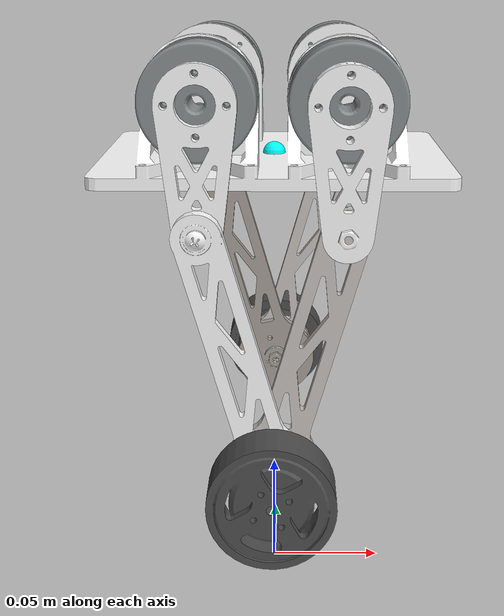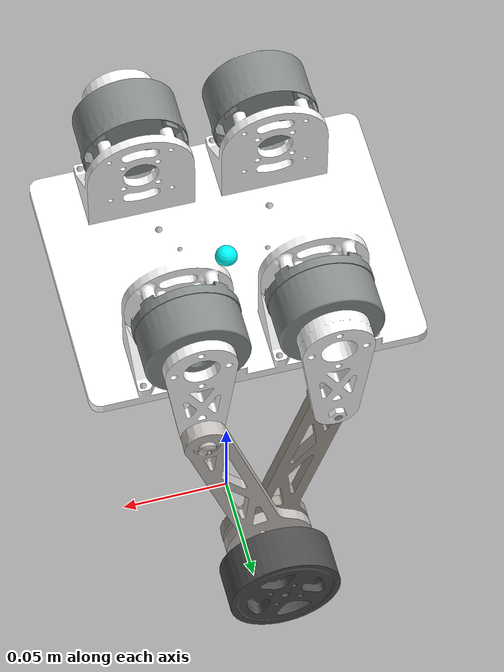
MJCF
<mujoco model="robot">
    <compiler angle="radian" meshdir="meshes"/>
    <!-- 设置重力和部分参数 -->
    <option gravity="0 0 -9.81" timestep="0.001" iterations="100" solver="Newton" tolerance="1e-10" />
    <size njmax="500" nconmax="100" />

    <asset>
        <mesh name="base_link" content_type="model/stl" file="base_link.STL"/>
        <mesh name="lf_hip_roll" content_type="model/stl" file="lf_hip_roll.STL"/>
        <mesh name="lf_hip_pitch" content_type="model/stl" file="lf_hip_pitch.STL"/>
        <mesh name="lf_knee" content_type="model/stl" file="lf_knee.STL"/>
        <mesh name="lb_hip_roll" content_type="model/stl" file="lb_hip_roll.STL"/>
        <mesh name="lb_hip_pitch" content_type="model/stl" file="lb_hip_pitch.STL"/>
        <mesh name="lb_knee" content_type="model/stl" file="lb_knee.STL"/>
        <mesh name="rf_hip_roll" content_type="model/stl" file="rf_hip_roll.STL"/>
        <mesh name="rf_hip_pitch" content_type="model/stl" file="rf_hip_pitch.STL"/>
        <mesh name="rf_knee" content_type="model/stl" file="rf_knee.STL"/>
        <mesh name="rb_hip_roll" content_type="model/stl" file="rb_hip_roll.STL"/>
        <mesh name="rb_hip_pitch" content_type="model/stl" file="rb_hip_pitch.STL"/>
        <mesh name="rb_knee" content_type="model/stl" file="rb_knee.STL"/>
        <mesh name="l_motor" content_type="model/stl" file="l_motor.STL"/>
        <mesh name="r_motor" content_type="model/stl" file="r_motor.STL"/>
    </asset>

    <worldbody>
        <!-- 设置光源 -->
        <light name="main_light" pos="0 0 1.5" dir="0 0 -1" directional="true" castshadow="true"/>
        <!-- 设置地面及摩擦力 -->

        <!-- 设置初始高度 -->
        <body name="base" pos="0 0 0.2">
            <freejoint name="root_joint"/>
            <!-- 设置imu -->
            <site name="imu_site" pos="0 0 0" size="0.005" rgba="0 1 1 1"/>
            <geom type="mesh" rgba="1 1 1 1" mesh="base_link"/>
            <body name="lf_hip_roll" pos="0.029258 0.0665 0.03">
                <inertial pos="0 -0.0102978 0" quat="0.5 0.5 0.5 0.5" mass="0.260983" diaginertia="7.24544e-05 4.61537e-05 4.52473e-05"/>
                <geom type="mesh" rgba="0.529412 0.54902 0.54902 1" mesh="lf_hip_roll" contype="0" conaffinity="0"/>
                <body name="lf_hip_pitch">
                    <inertial pos="1.39083e-09 0.00278123 -0.0296272" quat="0.707105 -0.00155924 0.00155924 0.707105" mass="0.0113202" diaginertia="3.84476e-06 3.27678e-06 6.09459e-07"/>
                    <joint name="jlf_hip_pitch" pos="0 0 0" axis="0 1 0" damping="0.1" armature="0.1"/>
                    <geom type="mesh" rgba="1 1 1 1" mesh="lf_hip_pitch" contype="0" conaffinity="0"/>
                    <body name="lf_knee" pos="0 0.006 -0.05" quat="0.990051 0 0.140707 0">
                        <inertial pos="8.88293e-07 0.0017347 -0.0665765" quat="0.707108 1.09772e-05 -0.000303295 0.707105" mass="0.0215549" diaginertia="2.02928e-05 1.9397e-05 1.22527e-06"/>
                        <joint name="jlf_knee" pos="0 0 0" axis="0 1 0"/>
                        <geom type="mesh" rgba="0.776471 0.756863 0.737255 1" mesh="lf_knee" contype="0" conaffinity="0"/>
                        <site name="lf_knee_connect" pos="0 0 -0.105" size="0.005" rgba="1 0 0 1"/>
                        <body name="l_motor" pos="0 0.023 -0.105" quat="0.990051 0 -0.140707 0">
                            <inertial pos="0 0.00155846 0" quat="0.707107 0 0 0.707107" mass="0.0933707" diaginertia="3.23068e-05 1.93902e-05 1.93902e-05"/>
                            <joint name="jl_motor" pos="0 0 0" axis="0 1 0" damping="0.3" armature="0.1"/>
                            <geom type="mesh" mesh="l_motor" rgba="0.298039 0.298039 0.298039 1" contype="0" conaffinity="0"/>
                            <geom type="cylinder" size="0.0258 0.011" zaxis="0 1 0" friction="1.5 0.01 0.005" rgba="1 0 1 0"/>
                        </body>
                    </body>
                </body>
            </body>

            <body name="lb_hip_roll" pos="-0.02925 0.0665 0.03">
                <inertial pos="0 -0.0102978 0" quat="0.5 0.5 0.5 0.5" mass="0.260983" diaginertia="7.24544e-05 4.61537e-05 4.52473e-05"/>
                <geom type="mesh" rgba="0.529412 0.54902 0.54902 1" mesh="lb_hip_roll" contype="0" conaffinity="0"/>
                <body name="lb_hip_pitch">
                    <inertial pos="1.08394e-09 0.006194 -0.0231928" quat="0.707105 0.00144907 -0.00144907 0.707105" mass="0.0144608" diaginertia="4.34985e-06 3.53587e-06 8.68555e-07"/>
                    <joint name="jlb_hip_pitch" pos="0 0 0" axis="0 1 0" damping="0.1" armature="0.1"/>
                    <geom type="mesh" rgba="1 1 1 1" mesh="lb_hip_pitch" contype="0" conaffinity="0"/>
                    <body name="lb_knee" pos="0 0.005 -0.05" quat="0.990051 0 -0.140707 0">
                        <inertial pos="-8.43633e-07 -0.00337117 -0.0555442" quat="0.707108 -1.09282e-05 0.000303247 0.707105" mass="0.0226877" diaginertia="2.03067e-05 1.9405e-05 1.23326e-06"/>
                        <joint name="jlb_knee" pos="0 0 0" axis="0 1 0"/>
                        <geom type="mesh" rgba="0.647059 0.619608 0.588235 1" mesh="lb_knee" contype="0" conaffinity="0"/>
                        <site name="lb_knee_connect" pos="0 0 -0.105" size="0.005" rgba="1 0 0 1"/>
                    </body>
                </body>
            </body>

            <body name="rf_hip_roll" pos="0.029258 -0.0665 0.03">
                <inertial pos="0 0.0102978 0" quat="0.5 0.5 0.5 0.5" mass="0.260983" diaginertia="7.24544e-05 4.61537e-05 4.52473e-05"/>
                <geom type="mesh" rgba="0.529412 0.54902 0.54902 1" mesh="rf_hip_roll" contype="0" conaffinity="0"/>
                <body name="rf_hip_pitch">
                    <inertial pos="1.08395e-09 -0.00619395 -0.0231928" quat="0.707105 -0.00144906 0.00144906 0.707105" mass="0.0144608" diaginertia="4.34985e-06 3.53587e-06 8.68555e-07"/>
                    <joint name="jrf_hip_pitch" pos="0 0 0" axis="0 -1 0" damping="0.1" armature="0.1"/>
                    <geom type="mesh" rgba="1 1 1 1" mesh="rf_hip_pitch" contype="0" conaffinity="0"/>
                    <body name="rf_knee" pos="0 -0.004 -0.05" quat="0.990051 0 0.140707 0">
                        <inertial pos="9.35067e-07 0.00247087 -0.0665079" quat="0.707108 1.05782e-05 -0.000302897 0.707105" mass="0.0204922" diaginertia="2.02938e-05 1.93494e-05 1.17768e-06"/>
                        <joint name="jrf_knee" pos="0 0 0" axis="0 -1 0"/>
                        <geom type="mesh" rgba="0.776471 0.756863 0.737255 1" mesh="rf_knee" contype="0" conaffinity="0"/>
                        <site name="rf_knee_connect" pos="0 0 -0.105" size="0.005" rgba="1 0 0 1"/>
                    </body>
                </body>
            </body>

            <body name="rb_hip_roll" pos="-0.02925 -0.0665 0.03">
                <inertial pos="0 0.0102978 0" quat="0.5 0.5 0.5 0.5" mass="0.260983" diaginertia="7.24544e-05 4.61537e-05 4.52473e-05"/>
                <geom type="mesh" rgba="0.529412 0.54902 0.54902 1" mesh="rb_hip_roll" contype="0" conaffinity="0"/>
                <body name="rb_hip_pitch">
                    <inertial pos="1.39082e-09 -0.00278116 -0.0296272" quat="0.707105 0.00155925 -0.00155925 0.707105" mass="0.0113202" diaginertia="3.84476e-06 3.27678e-06 6.09459e-07"/>
                    <joint name="jrb_hip_pitch" pos="0 0 0" axis="0 -1 0" damping="0.1" armature="0.1"/>
                    <geom type="mesh" rgba="1 1 1 1" mesh="rb_hip_pitch" contype="0" conaffinity="0"/>
                    <body name="rb_knee" pos="0 -0.005 -0.05" quat="0.990051 0 -0.140707 0">
                        <inertial pos="-1.02082e-06 -0.0030681 -0.060844" quat="0.707108 -1.12938e-05 0.000303611 0.707105" mass="0.0187565" diaginertia="2.02076e-05 1.93501e-05 1.17834e-06"/>
                        <joint name="jrb_knee" pos="0 0 0" axis="0 -1 0"/>
                        <geom type="mesh" rgba="1 1 1 1" mesh="rb_knee" contype="0" conaffinity="0"/>
                        <site name="rb_knee_connect" pos="0 0 -0.105" size="0.005" rgba="1 0 0 1"/>
                        <body name="r_motor" pos="0 -0.024 -0.105" quat="0.990051 0 0.140707 0">
                            <inertial pos="0 -0.00155846 0" quat="0.707107 0 0 0.707107" mass="0.0933707" diaginertia="3.23068e-05 1.93902e-05 1.93902e-05"/>
                            <joint name="jr_motor" pos="0 0 0" axis="0 -1 0" damping="0.3" armature="0.1"/>
                            <geom type="mesh" mesh="r_motor" rgba="0.298039 0.298039 0.298039 1" contype="0" conaffinity="0"/>
                            <geom type="cylinder" size="0.0258 0.011" zaxis="0 1 0" friction="1.5 0.01 0.005" rgba="1 0 1 0"/>
                        </body>
                    </body>
                </body>
            </body>

        </body>
    </worldbody>
    <equality>
        <connect site1="lf_knee_connect" site2="lb_knee_connect"/>
        <connect site1="rf_knee_connect" site2="rb_knee_connect"/>
    </equality>
    <actuator>
        <motor name="lf_motor"  joint="jlf_hip_pitch"  ctrlrange="-250 250" ctrllimited="true"/>
        <motor name="lb_motor"  joint="jlb_hip_pitch"  ctrlrange="-250 250" ctrllimited="true"/>
        <motor name="rf_motor"  joint="jrf_hip_pitch"  ctrlrange="-250 250" ctrllimited="true"/>
        <motor name="rb_motor"  joint="jrb_hip_pitch"  ctrlrange="-250 250" ctrllimited="true"/>

        <velocity name="l_wheel" joint="jl_motor" kv="200" ctrlrange="-250 250" ctrllimited="true"/>
        <velocity name="r_wheel" joint="jr_motor" kv="200" ctrlrange="-250 250" ctrllimited="true"/>
    </actuator>
    <sensor>
        <jointpos name="lf_motor_pos" joint="jlf_hip_pitch"/>
        <jointpos name="lb_motor_pos" joint="jlb_hip_pitch"/>
        <jointpos name="rf_motor_pos" joint="jrf_hip_pitch"/>
        <jointpos name="rb_motor_pos" joint="jrb_hip_pitch"/>
        <jointpos name="l_wheel_pos"  joint="jl_motor"/>
        <jointpos name="r_wheel_pos"  joint="jr_motor"/>

        <jointvel name="lf_motor_vel" joint="jlf_hip_pitch"/>
        <jointvel name="lb_motor_vel" joint="jlb_hip_pitch"/>
        <jointvel name="rf_motor_vel" joint="jrf_hip_pitch"/>
        <jointvel name="rb_motor_vel" joint="jrb_hip_pitch"/>
        <jointvel name="l_wheel_vel"  joint="jl_motor"/>
        <jointvel name="r_wheel_vel"  joint="jr_motor"/>

        <jointactuatorfrc name="lf_motor_torque" joint="jlf_hip_pitch"/>
        <jointactuatorfrc name="lb_motor_torque" joint="jlb_hip_pitch"/>
        <jointactuatorfrc name="rf_motor_torque" joint="jrf_hip_pitch"/>
        <jointactuatorfrc name="rb_motor_torque" joint="jrb_hip_pitch"/>
        <jointactuatorfrc name="l_wheel_torque"  joint="jl_motor"/>
        <jointactuatorfrc name="r_wheel_torque"  joint="jr_motor"/>

        <framequat name="imu_quat" objtype="site" objname="imu_site"/>
        <gyro name="imu_gyro" site="imu_site"/>
        <accelerometer name="imu_acc" site="imu_site"/>
        <framepos name="imu_pos" objtype="site" objname="imu_site"/>
        <framelinvel name="imu_vel" objtype="site" objname="imu_site"/>
    </sensor>
</mujoco>
